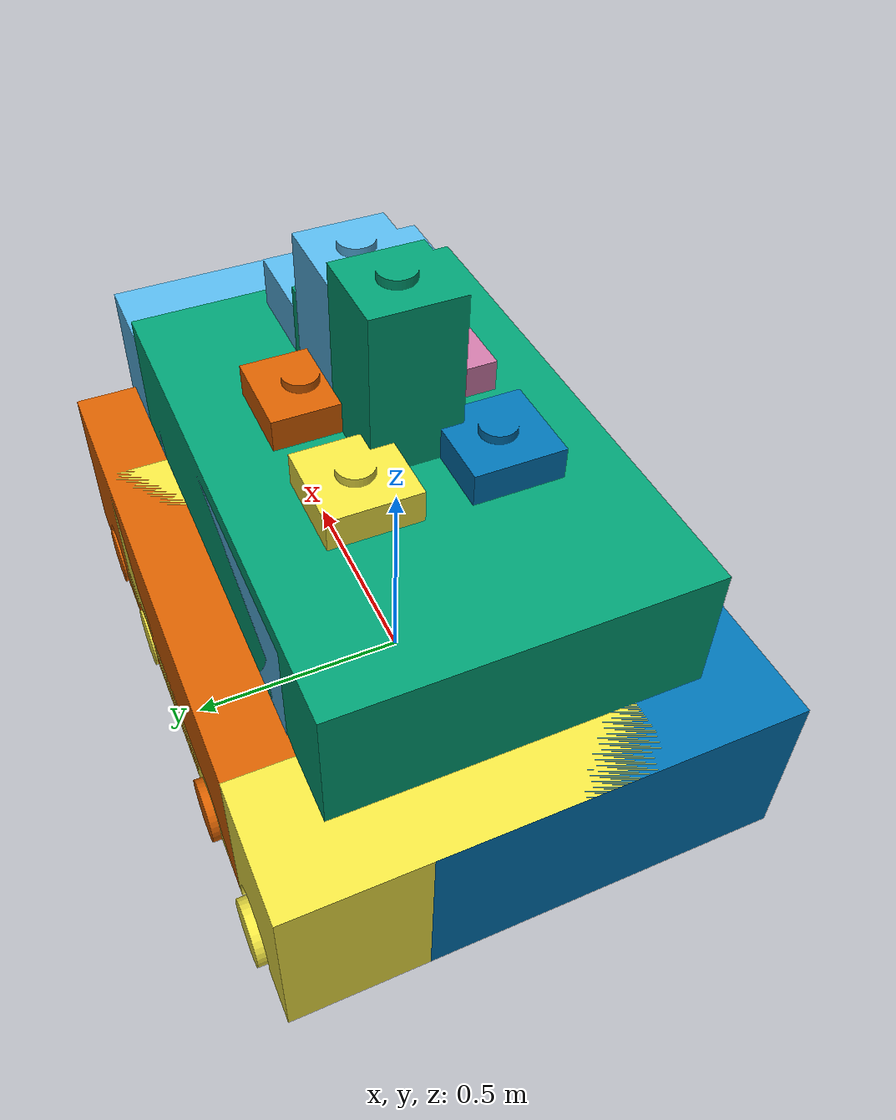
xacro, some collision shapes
<?xml version="1.0"?>
  <robot xmlns:xacro="http://ros.org/wiki/xacro" name="robo_camuflado">

    <!-- Base Link -->
    <link name="base_footprint">
      <visual>
        <geometry>
          <mesh filename="package://turtlebot3/models/robo_camuflado/meshes/base_footprint.dae" scale="1 1 1"/>
        </geometry>
      </visual>
      <collision>
        <geometry>
          <box size="0.5 0.3 0.2"/>
        </geometry>
      </collision>
      <inertial>
        <mass value="5.0"/>
        <inertia
          ixx="0.1" ixy="0.0" ixz="0.0"
          iyy="0.1" iyz="0.0"
          izz="0.1"/>
      </inertial>
    </link>

    <!-- Camera Link -->
    <link name="cam_link">
      <visual>
        <geometry>
          <mesh filename="package://turtlebot3/models/robo_camuflado/meshes/cam_link.dae" scale="1 1 1"/>
        </geometry>
      </visual>
      <inertial>
        <mass value="0.1"/>
        <inertia
          ixx="0.0001" ixy="0.0" ixz="0.0"
          iyy="0.0001" iyz="0.0"
          izz="0.0001"/>
      </inertial>
    </link>

    <!-- Camera Joint -->
    <joint name="cam_joint" type="fixed">
      <parent link="base_footprint"/>
      <child link="cam_link"/>
      <origin xyz="0.2 0 0.15" rpy="0 0 0"/>
    </joint>

    <!-- LiDAR Link -->
    <link name="lidar_link">
      <visual>
        <geometry>
          <mesh filename="package://turtlebot3/models/robo_camuflado/meshes/lidar_link.dae" scale="1 1 1"/>
        </geometry>
      </visual>
      <inertial>
        <mass value="0.2"/>
        <inertia
          ixx="0.0002" ixy="0.0" ixz="0.0"
          iyy="0.0002" iyz="0.0"
          izz="0.0002"/>
      </inertial>
    </link>

    <!-- LiDAR Joint -->
    <joint name="lidar_joint" type="fixed">
      <parent link="base_footprint"/>
      <child link="lidar_link"/>
      <origin xyz="0 0 0.2" rpy="0 0 0"/>
    </joint>

    <!-- Wheels -->
    <link name="wheel_fl">
      <visual>
        <geometry>
          <mesh filename="package://turtlebot3/models/robo_camuflado/meshes/wheel_fl.dae" scale="1 1 1"/>
        </geometry>
      </visual>
      <collision>
        <geometry>
          <cylinder radius="0.1" length="0.05"/>
        </geometry>
      </collision>
      <inertial>
        <mass value="0.5"/>
        <inertia
          ixx="0.01" ixy="0.0" ixz="0.0"
          iyy="0.01" iyz="0.0"
          izz="0.005"/>
      </inertial>
    </link>

    <link name="wheel_fr">
      <visual>
        <geometry>
          <mesh filename="package://turtlebot3/models/robo_camuflado/meshes/wheel_fr.dae" scale="1 1 1"/>
        </geometry>
      </visual>
      <collision>
        <geometry>
          <cylinder radius="0.1" length="0.05"/>
        </geometry>
      </collision>
      <inertial>
        <mass value="0.5"/>
        <inertia
          ixx="0.01" ixy="0.0" ixz="0.0"
          iyy="0.01" iyz="0.0"
          izz="0.005"/>
      </inertial>
    </link>

    <link name="wheel_bl">
      <visual>
        <geometry>
          <mesh filename="package://turtlebot3/models/robo_camuflado/meshes/wheel_bl.dae" scale="1 1 1"/>
        </geometry>
      </visual>
      <collision>
        <geometry>
          <cylinder radius="0.1" length="0.05"/>
        </geometry>
      </collision>
      <inertial>
        <mass value="0.5"/>
        <inertia
          ixx="0.01" ixy="0.0" ixz="0.0"
          iyy="0.01" iyz="0.0"
          izz="0.005"/>
      </inertial>
    </link>

    <link name="wheel_br">
      <visual>
        <geometry>
          <mesh filename="package://turtlebot3/models/robo_camuflado/meshes/wheel_br.dae" scale="1 1 1"/>
        </geometry>
      </visual>
      <collision>
        <geometry>
          <cylinder radius="0.1" length="0.05"/>
        </geometry>
      </collision>
      <inertial>
        <mass value="0.5"/>
        <inertia
          ixx="0.01" ixy="0.0" ixz="0.0"
          iyy="0.01" iyz="0.0"
          izz="0.005"/>
      </inertial>
    </link>

    <!-- Wheel Joints -->
    <joint name="wheel_fl_joint" type="revolute">
      <parent link="base_footprint"/>
      <child link="wheel_fl"/>
      <origin xyz="-0.15 0.15 -0.1" rpy="0 0 0"/>
      <axis xyz="0 1 0"/>
      <limit lower="-10000000000000000" upper="10000000000000000"/>
    </joint>

    <joint name="wheel_fr_joint" type="revolute">
      <parent link="base_footprint"/>
      <child link="wheel_fr"/>
      <origin xyz="-0.15 -0.15 -0.1" rpy="0 0 0"/>
      <axis xyz="0 1 0"/>
      <limit lower="-10000000000000000" upper="10000000000000000"/>
    </joint>

    <joint name="wheel_bl_joint" type="revolute">
      <parent link="base_footprint"/>
      <child link="wheel_bl"/>
      <origin xyz="0.15 0.15 -0.1" rpy="0 0 0"/>
      <axis xyz="0 1 0"/>
      <limit lower="-10000000000000000" upper="10000000000000000"/>
    </joint>

    <joint name="wheel_br_joint" type="revolute">
      <parent link="base_footprint"/>
      <child link="wheel_br"/>
      <origin xyz="0.15 -0.15 -0.1" rpy="0 0 0"/>
      <axis xyz="0 1 0"/>
      <limit lower="-10000000000000000" upper="10000000000000000"/>
    </joint>

  </robot>
